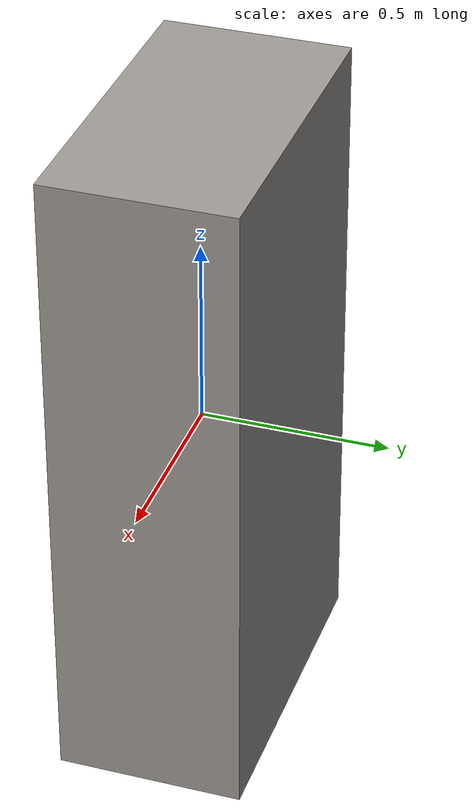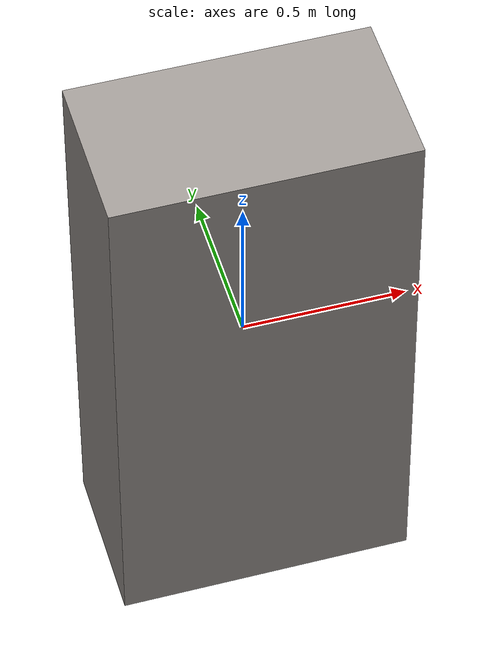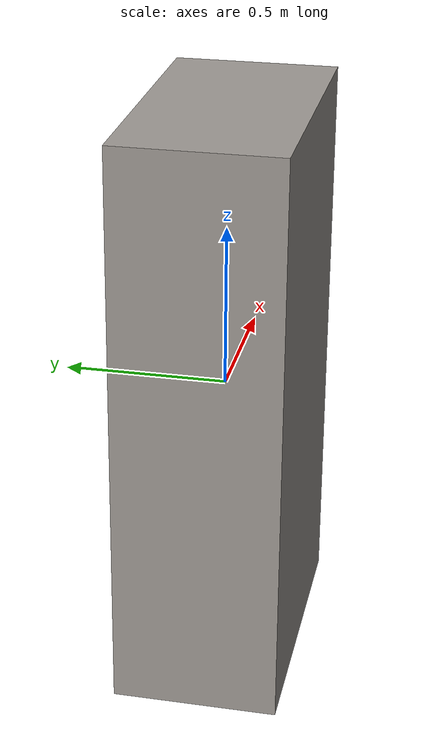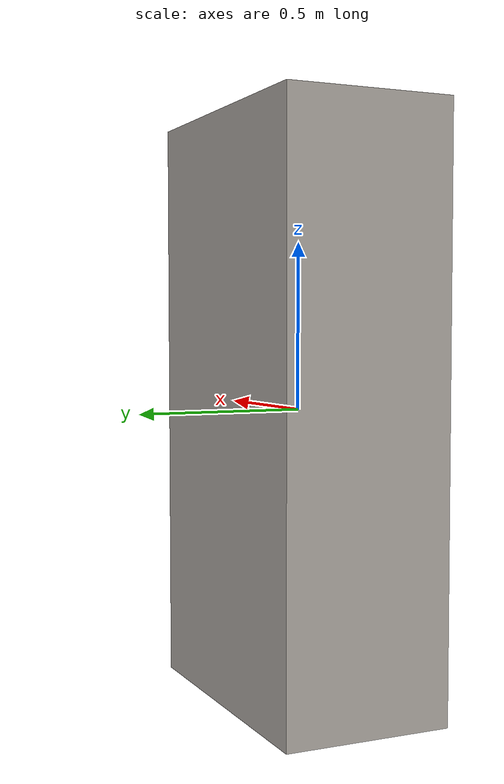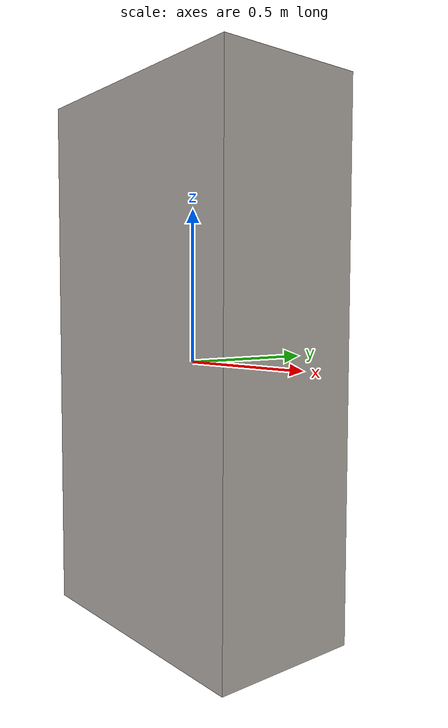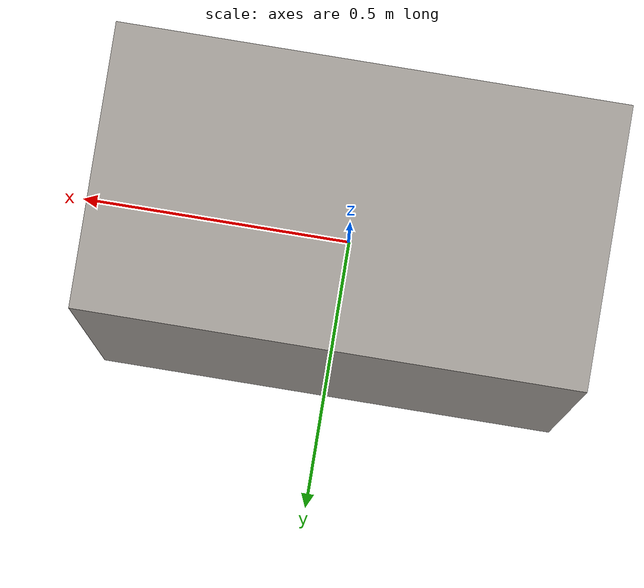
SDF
<?xml version="1.0"?>
<sdf version="1.6">
  <model name="utility_cabinet">
    <static>true</static>
    <link name="link">
      <collision name="col">
        <geometry>
          <box>
            <size>0.9 0.5 1.75</size>
          </box>
        </geometry>
      </collision>
      <visual name="vis">
        <geometry>
          <box>
            <size>0.9 0.5 1.75</size>
          </box>
        </geometry>
        <material>
          <ambient>0.62 0.6 0.58 1</ambient>
          <diffuse>0.62 0.6 0.58 1</diffuse>
        </material>
      </visual>
    </link>
  </model>
</sdf>
